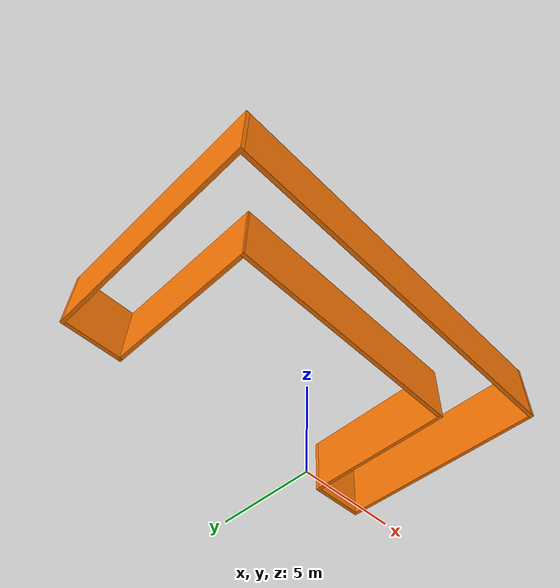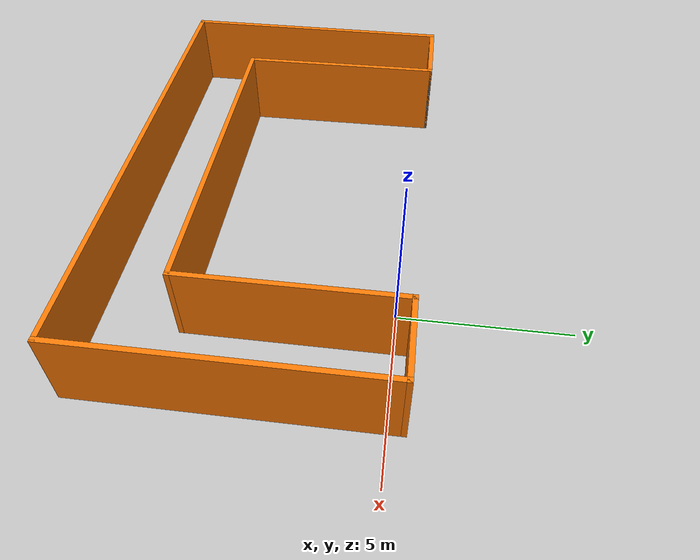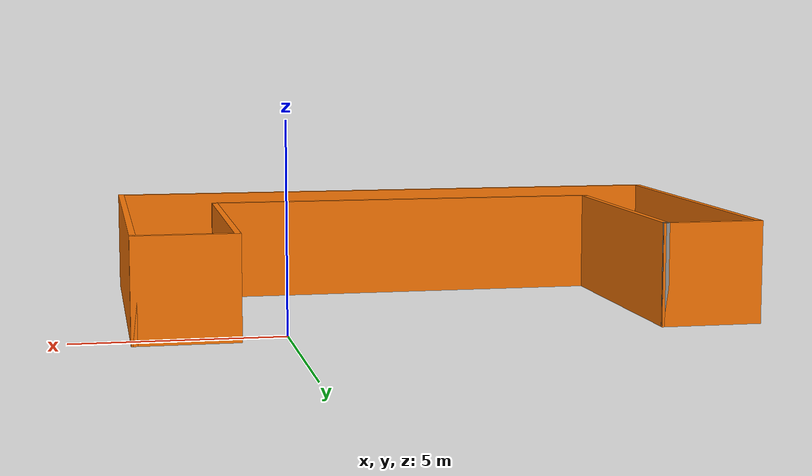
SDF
<?xml version='1.0'?>
<sdf version='1.6'>
  <model name='Myworld'>
    <pose frame=''>-3.90609 -3.97988 0 0 -0 0</pose>
    <link name='Wall_0'>
      <collision name='Wall_0_Collision'>
        <geometry>
          <box>
            <size>2.5 0.15 2.5</size>
          </box>
        </geometry>
        <pose frame=''>0 0 1.25 0 -0 0</pose>
      </collision>
      <visual name='Wall_0_Visual'>
        <pose frame=''>0 0 1.25 0 -0 0</pose>
        <geometry>
          <box>
            <size>2.5 0.15 2.5</size>
          </box>
        </geometry>
        <material>
          <script>
            <uri>file://media/materials/scripts/gazebo.material</uri>
            <name>Gazebo/Grey</name>
          </script>
          <ambient>0.996078 0.47451 0.0196078 1</ambient>
        </material>
        <meta>
          <layer>0</layer>
        </meta>
      </visual>
      <pose frame=''>-6.25 4.42476 0 0 -0 3.14159</pose>
    </link>
    <link name='Wall_1'>
      <collision name='Wall_1_Collision'>
        <geometry>
          <box>
            <size>9 0.15 2.5</size>
          </box>
        </geometry>
        <pose frame=''>0 0 1.25 0 -0 0</pose>
      </collision>
      <visual name='Wall_1_Visual'>
        <pose frame=''>0 0 1.25 0 -0 0</pose>
        <geometry>
          <box>
            <size>9 0.15 2.5</size>
          </box>
        </geometry>
        <material>
          <script>
            <uri>file://media/materials/scripts/gazebo.material</uri>
            <name>Gazebo/Grey</name>
          </script>
          <ambient>0.996078 0.47451 0.0196078 1</ambient>
        </material>
        <meta>
          <layer>0</layer>
        </meta>
      </visual>
      <pose frame=''>-7.425 -0.000245 0 0 0 -1.5708</pose>
    </link>
    <link name='Wall_2'>
      <collision name='Wall_2_Collision'>
        <geometry>
          <box>
            <size>15 0.15 2.5</size>
          </box>
        </geometry>
        <pose frame=''>0 0 1.25 0 -0 0</pose>
      </collision>
      <visual name='Wall_2_Visual'>
        <pose frame=''>0 0 1.25 0 -0 0</pose>
        <geometry>
          <box>
            <size>15 0.15 2.5</size>
          </box>
        </geometry>
        <material>
          <script>
            <uri>file://media/materials/scripts/gazebo.material</uri>
            <name>Gazebo/Grey</name>
          </script>
          <ambient>0.996078 0.47451 0.0196078 1</ambient>
        </material>
        <meta>
          <layer>0</layer>
        </meta>
      </visual>
      <pose frame=''>0 -4.42524 0 0 -0 0</pose>
    </link>
    <link name='Wall_3'>
      <collision name='Wall_3_Collision'>
        <geometry>
          <box>
            <size>9 0.15 2.5</size>
          </box>
        </geometry>
        <pose frame=''>0 0 1.25 0 -0 0</pose>
      </collision>
      <visual name='Wall_3_Visual'>
        <pose frame=''>0 0 1.25 0 -0 0</pose>
        <geometry>
          <box>
            <size>9 0.15 2.5</size>
          </box>
        </geometry>
        <material>
          <script>
            <uri>file://media/materials/scripts/gazebo.material</uri>
            <name>Gazebo/Grey</name>
          </script>
          <ambient>0.996078 0.47451 0.0196078 1</ambient>
        </material>
        <meta>
          <layer>0</layer>
        </meta>
      </visual>
      <pose frame=''>7.425 -0.000245 0 0 -0 1.5708</pose>
    </link>
    <link name='Wall_4'>
      <collision name='Wall_4_Collision'>
        <geometry>
          <box>
            <size>2.5 0.15 2.5</size>
          </box>
        </geometry>
        <pose frame=''>0 0 1.25 0 -0 0</pose>
      </collision>
      <visual name='Wall_4_Visual'>
        <pose frame=''>0 0 1.25 0 -0 0</pose>
        <geometry>
          <box>
            <size>2.5 0.15 2.5</size>
          </box>
        </geometry>
        <material>
          <script>
            <uri>file://media/materials/scripts/gazebo.material</uri>
            <name>Gazebo/Grey</name>
          </script>
          <ambient>0.996078 0.47451 0.0196078 1</ambient>
        </material>
        <meta>
          <layer>0</layer>
        </meta>
      </visual>
      <pose frame=''>6.25 4.42476 0 0 -0 3.14159</pose>
    </link>
    <link name='Wall_5'>
      <collision name='Wall_5_Collision'>
        <geometry>
          <box>
            <size>6.5 0.15 2.5</size>
          </box>
        </geometry>
        <pose frame=''>0 0 1.25 0 -0 0</pose>
      </collision>
      <visual name='Wall_5_Visual'>
        <pose frame=''>0 0 1.25 0 -0 0</pose>
        <geometry>
          <box>
            <size>6.5 0.15 2.5</size>
          </box>
        </geometry>
        <material>
          <script>
            <uri>file://media/materials/scripts/gazebo.material</uri>
            <name>Gazebo/Grey</name>
          </script>
          <ambient>0.996078 0.47451 0.0196078 1</ambient>
        </material>
        <meta>
          <layer>0</layer>
        </meta>
      </visual>
      <pose frame=''>5.075 1.24975 0 0 0 -1.5708</pose>
    </link>
    <link name='Wall_6'>
      <collision name='Wall_6_Collision'>
        <geometry>
          <box>
            <size>10.25 0.15 2.5</size>
          </box>
        </geometry>
        <pose frame=''>0 0 1.25 0 -0 0</pose>
      </collision>
      <visual name='Wall_6_Visual'>
        <pose frame=''>0 0 1.25 0 -0 0</pose>
        <geometry>
          <box>
            <size>10.25 0.15 2.5</size>
          </box>
        </geometry>
        <material>
          <script>
            <uri>file://media/materials/scripts/gazebo.material</uri>
            <name>Gazebo/Grey</name>
          </script>
          <ambient>0.996078 0.47451 0.0196078 1</ambient>
        </material>
        <meta>
          <layer>0</layer>
        </meta>
      </visual>
      <pose frame=''>0.025 -1.92525 0 0 -0 3.14159</pose>
    </link>
    <link name='Wall_7'>
      <collision name='Wall_7_Collision'>
        <geometry>
          <box>
            <size>6.5 0.15 2.5</size>
          </box>
        </geometry>
        <pose frame=''>0 0 1.25 0 -0 0</pose>
      </collision>
      <visual name='Wall_7_Visual'>
        <pose frame=''>0 0 1.25 0 -0 0</pose>
        <geometry>
          <box>
            <size>6.5 0.15 2.5</size>
          </box>
        </geometry>
        <material>
          <script>
            <uri>file://media/materials/scripts/gazebo.material</uri>
            <name>Gazebo/Grey</name>
          </script>
          <ambient>0.996078 0.47451 0.0196078 1</ambient>
        </material>
        <meta>
          <layer>0</layer>
        </meta>
      </visual>
      <pose frame=''>-5.05 1.24975 0 0 -0 1.57867</pose>
    </link>
    <link name='Wall_8'>
      <collision name='Wall_8_Collision'>
        <geometry>
          <box>
            <size>0.15 0.15 2.5</size>
          </box>
        </geometry>
        <pose frame=''>0 0 1.25 0 -0 0</pose>
      </collision>
      <visual name='Wall_8_Visual'>
        <pose frame=''>0 0 1.25 0 -0 0</pose>
        <geometry>
          <box>
            <size>0.15 0.15 2.5</size>
          </box>
        </geometry>
        <material>
          <script>
            <uri>file://media/materials/scripts/gazebo.material</uri>
            <name>Gazebo/Grey</name>
          </script>
          <ambient>1 1 1 1</ambient>
        </material>
        <meta>
          <layer>0</layer>
        </meta>
      </visual>
      <pose frame=''>-5.075 4.42476 0 0 -0 0</pose>
    </link>
    <static>1</static>
  </model>
</sdf>
